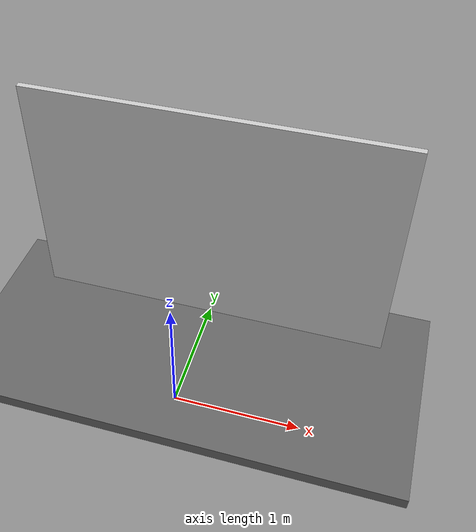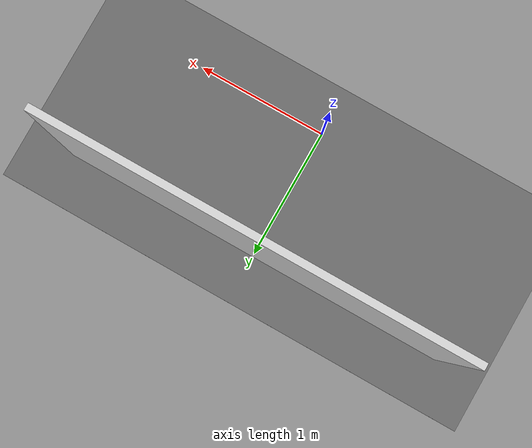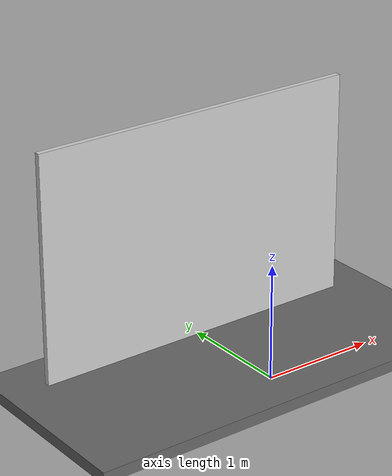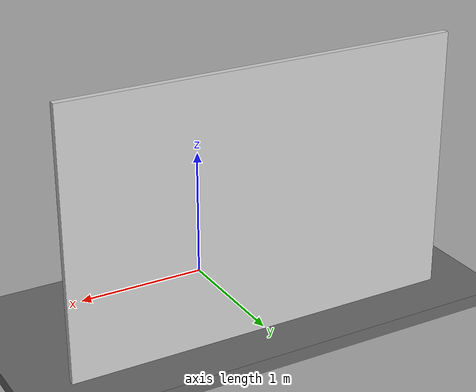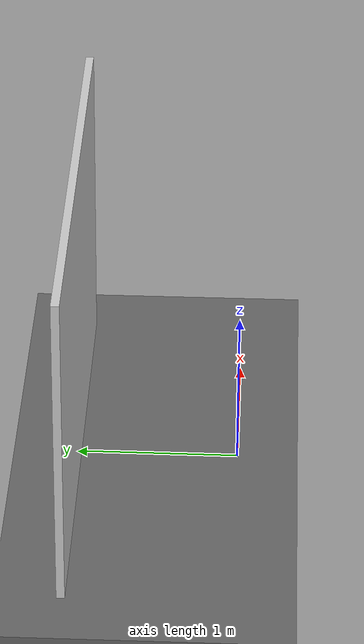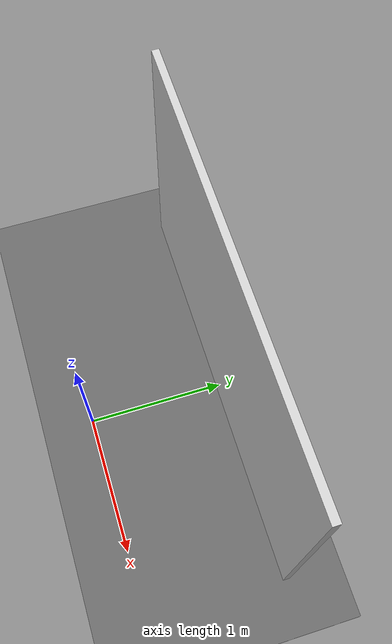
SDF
<?xml version="1.0" ?>
<sdf version="1.8">
  <world name="taperon_world">
    <gravity>0 0 -1</gravity>

    <!-- Flat ground -->
    <model name="ground">
      <static>true</static>
      <link name="link">
        <pose>0 0 -0.05 0 0 0</pose>
        <collision name="collision">
          <geometry>
            <box><size>50 50 0.1</size></box>
          </geometry>
        </collision>
        <visual name="visual">
          <geometry>
            <box><size>50 50 0.1</size></box>
          </geometry>
          <material>
            <ambient>0.35 0.35 0.35 1</ambient>
            <diffuse>0.4 0.4 0.4 1</diffuse>
          </material>
        </visual>
      </link>
    </model>

    <!-- The wall: 5 cm thick, 3 m wide, 2 m tall -->
    <model name="wall">
      <static>true</static>
      <!-- x y z roll pitch yaw -->
      <pose>0 1 1 0 0 0</pose>
      <link name="link">
        <collision name="collision">
          <geometry>
            <box><size>3 0.05 2</size></box>
          </geometry>
        </collision>
        <visual name="visual">
          <geometry>
            <box><size>3 0.05 2</size></box>
          </geometry>
          <material>
            <ambient>0.7 0.7 0.7 1</ambient>
            <diffuse>0.8 0.8 0.8 1</diffuse>
          </material>
        </visual>
      </link>
    </model>

  </world>
</sdf>
